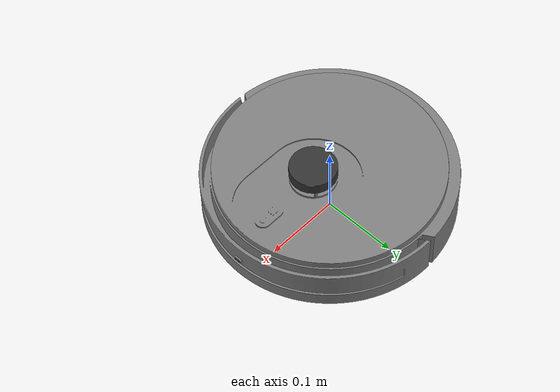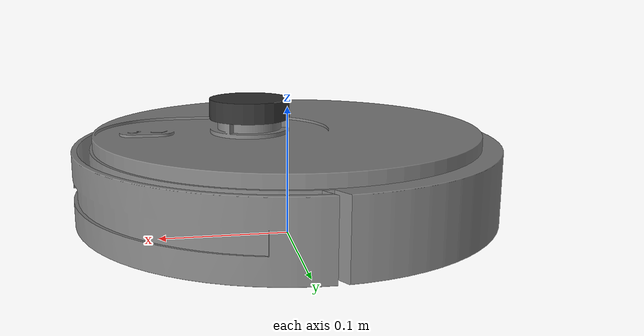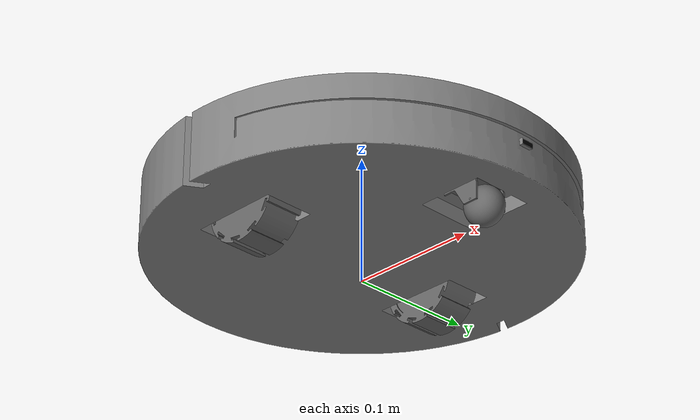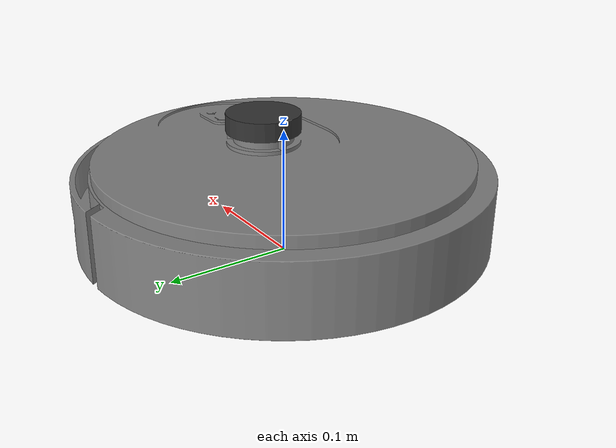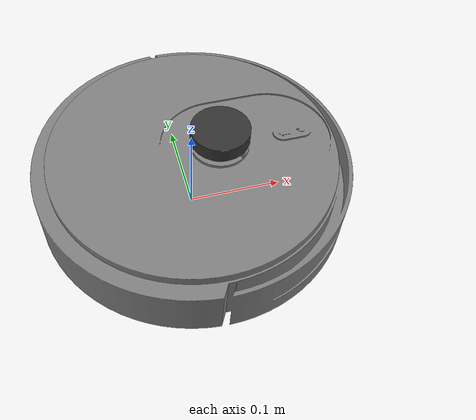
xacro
<?xml version="1.0" ?>
<!-- Generated using onshape-to-robot -->
<!-- Onshape document_id: 6ec665232e6fc828980877e8 -->
<robot name="robot_vacuum" xmlns:xacro="http://www.ros.org/wiki/xacro">

    <xacro:include filename="xacro_properties/xacro_properties.xacro" />
    <xacro:include filename="modules/base_and_wheels.xacro" />
    <xacro:include filename="modules/camera.xacro" />
    <xacro:include filename="modules/lidar.xacro" />
    <xacro:include filename="gazebo/gazebo_plugins.xacro" />
    <xacro:include filename="gazebo/gazebo_properties.xacro" />

</robot>

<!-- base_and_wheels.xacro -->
<!-- Generated using onshape-to-robot -->
<!-- Onshape document_id: 6ec665232e6fc828980877e8 -->
<robot xmlns:xacro="http://www.ros.org/wiki/xacro">

<!-- Link base footprint-->
    <link name="base_footprint" />
    <!-- Joint base footprint -->
    <joint name="base_joint" type="fixed">
        <parent link="base_footprint"/>
        <child link="base_link"/>
        <origin xyz="0.0 0.0 0.0194" rpy="0.0 0.0 0.0"/>
    </joint>

<!-- Link base_link -->
  <link name="base_link">
    <inertial>
      <origin xyz="-0.00746509 0 0.0155039" rpy="0 0 0"/>
      <mass value="1.93363"/>
      <inertia ixx="0.0146674" ixy="-0" ixz="0.000285193" iyy="0.0151949" iyz="-0" izz="0.029234"/>
    </inertial>
    <!-- Part base_link -->
    <visual>
      <origin xyz="0 0 0" rpy="-0 -0 -1.5708"/>
      <geometry>
        <mesh filename="package://robot_vacuum_description/assets/base_link.stl"/>
      </geometry>
      <material name="base_link_material">
        <color rgba="0.501961 0.501961 0.501961 1"/>
      </material>
    </visual>
    <collision>
      <origin xyz="0 0 0" rpy="-0 -0 -1.5708"/>
      <geometry>
        <mesh filename="package://robot_vacuum_description/assets/base_link.stl"/>
      </geometry>
    </collision>
  </link>

  <!-- Link roof -->
  <link name="roof_link">
    <inertial>
      <origin xyz="-2e-12 -0.00178866 -0.00507735" rpy="0 0 0"/>
      <mass value="0.683273"/>
      <inertia ixx="0.00350653" ixy="0" ixz="-0" iyy="0.00362483" iyz="-1.91394e-06" izz="0.00711728"/>
    </inertial>
    <!-- Part roof -->
    <visual>
      <origin xyz="-0 0 0" rpy="3.14159 -0 0"/>
      <geometry>
        <mesh filename="package://robot_vacuum_description/assets/roof.stl"/>
      </geometry>
      <material name="roof_link_material">
        <color rgba="0.501961 0.501961 0.501961 1"/>
      </material>
    </visual>
    <collision>
      <origin xyz="-0 0 0" rpy="3.14159 -0 0"/>
      <geometry>
        <mesh filename="package://robot_vacuum_description/assets/roof.stl"/>
      </geometry>
    </collision>
  </link>

   <!-- Joint from base_link to roof -->
  <joint name="roof_joint" type="fixed">
    <origin xyz="-0 0 0.0545" rpy="3.14159 0 1.5708"/>
    <parent link="base_link"/>
    <child link="roof_link"/>
    <axis xyz="0 0 1"/>
    <limit effort="100" velocity="100"/>
  </joint>

  <!-- Link left_wheel_link -->
  <link name="left_wheel_link">
    <inertial>
      <origin xyz="-0 -0 -0.0143302" rpy="0 0 0"/>
      <mass value="0.072608"/>
      <inertia ixx="2.16495e-05" ixy="0" ixz="-0" iyy="2.16495e-05" iyz="0" izz="3.29298e-05"/>
    </inertial>
    <!-- Part left_wheel_link -->
    <visual>
      <origin xyz="0 -0 -0.029" rpy="-0 -0 0"/>
      <geometry>
        <mesh filename="package://robot_vacuum_description/assets/wheel.stl"/>
      </geometry>
      <material name="left_wheel_material">
        <color rgba="0.4 0.4 0.4 1"/>
      </material>
    </visual>
    <collision>
      <origin xyz="0 -0 -0.029" rpy="-0 -0 0"/>
      <geometry>
        <mesh filename="package://robot_vacuum_description/assets/wheel.stl"/>
      </geometry>
    </collision>
  </link>

  <!-- Joint from base_link to left_wheel -->
  <joint name="left_wheel_joint" type="continuous">
    <origin xyz="-0.015 0.075 0.0115" rpy="1.5708 -1.03727 0"/>
    <parent link="base_link"/>
    <child link="left_wheel_link"/>
    <axis xyz="0 0 -1"/>
    <limit effort="100" velocity="100"/>
  </joint>

  <!-- Link right_wheel_link -->
  <link name="right_wheel_link">
    <inertial>
      <origin xyz="-0 -0 -0.0143302" rpy="0 0 0"/>
      <mass value="0.072608"/>
      <inertia ixx="2.16495e-05" ixy="0" ixz="-0" iyy="2.16495e-05" iyz="-0" izz="3.29298e-05"/>
    </inertial>
    <!-- Part right_wheel_link -->
    <visual>
      <origin xyz="-0 -0 -0.029" rpy="0 0 0"/>
      <geometry>
        <mesh filename="package://robot_vacuum_description/assets/wheel.stl"/>
      </geometry>
      <material name="right_wheel_material">
        <color rgba="0.4 0.4 0.4 1"/>
      </material>
    </visual>
    <collision>
      <origin xyz="-0 -0 -0.029" rpy="0 0 0"/>
      <geometry>
        <mesh filename="package://robot_vacuum_description/assets/wheel.stl"/>
      </geometry>
    </collision>
  </link>

  <!-- Joint from base_link to right_wheel -->
  <joint name="right_wheel_joint" type="continuous">
    <origin xyz="-0.015 -0.075 0.0115" rpy="1.5708 1.03727 -3.14159"/>
    <parent link="base_link"/>
    <child link="right_wheel_link"/>
    <axis xyz="0 0 1"/>
    <limit effort="100" velocity="100"/>
  </joint>

  <!-- Link caster_frame -->
  <link name="caster_frame_link">
    <inertial>
      <origin xyz="-0.00286518 -0 -0.0075839" rpy="0 0 0"/>
      <mass value="0.0016661"/>
      <inertia ixx="2.7546e-07" ixy="-0" ixz="-3.0744e-08" iyy="1.47808e-07" iyz="-0" izz="3.16241e-07"/>
    </inertial>
    <!-- Part caster_frame -->
    <visual>
      <origin xyz="0 -0 -0.002" rpy="-0 0 0"/>
      <geometry>
        <mesh filename="package://robot_vacuum_description/assets/caster_frame.stl"/>
      </geometry>
      <material name="caster_frame_link_material">
        <color rgba="0.4 0.4 0.4 1"/>
      </material>
    </visual>
    <collision>
      <origin xyz="0 -0 -0.002" rpy="-0 0 0"/>
      <geometry>
        <mesh filename="package://robot_vacuum_description/assets/caster_frame.stl"/>
      </geometry>
    </collision>
  </link>

  <!-- Link caster_wheel -->
  <link name="caster_wheel_link">
    <inertial>
      <origin xyz="0 -0 -0.0145998" rpy="0 0 0"/>
      <mass value="0.0115684"/>
      <inertia ixx="9.33961e-07" ixy="0" ixz="-0" iyy="9.33961e-07" iyz="-0" izz="1.06054e-06"/>
    </inertial>
    <!-- Part caster_wheel -->
    <visual>
      <origin xyz="0 0 -0.0021" rpy="1.5708 0 -0"/>
      <geometry>
        <mesh filename="package://robot_vacuum_description/assets/caster_wheel.stl"/>
      </geometry>
      <material name="caster_wheel_link_material">
        <color rgba="0.4 0.4 0.4 1"/>
      </material>
    </visual>
    <collision>
      <origin xyz="0 0 -0.0021" rpy="1.5708 0 -0"/>
      <geometry>
        <mesh filename="package://robot_vacuum_description/assets/caster_wheel.stl"/>
      </geometry>
    </collision>
  </link>

  <!-- Joint from caster_frame to caster_wheel -->
  <joint name="caster_wheel_joint" type="continuous">
    <origin xyz="-0.009 0.0145 -0.0192" rpy="-1.5708 -0 -0"/>
    <parent link="caster_frame_link"/>
    <child link="caster_wheel_link"/>
    <axis xyz="0 0 1"/>
    <limit effort="100" velocity="100"/>
  </joint>

  <!-- Joint from base_link to caster_frame -->
  <joint name="caster_frame_joint" type="continuous">
    <origin xyz="0.11 -0 0.014" rpy="0 -0 -3.14159"/>
    <parent link="base_link"/>
    <child link="caster_frame_link"/>
    <axis xyz="0 0 1"/>
    <limit effort="100" velocity="100"/>
  </joint>

</robot>

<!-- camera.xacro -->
<!-- Generated using onshape-to-robot -->
<!-- Onshape document_id: 6ec665232e6fc828980877e8 -->
<robot xmlns:xacro="http://www.ros.org/wiki/xacro">

    <!-- Link camera -->
  <link name="camera_link">
    <inertial>
      <origin xyz="-0 0 -0.00025" rpy="0 0 0"/>
      <mass value="2.63e-05"/>
      <inertia ixx="1e-09" ixy="0" ixz="0" iyy="1e-09" iyz="0" izz="1e-09"/>
    </inertial>
    <!-- Part camera -->
    <visual>
      <origin xyz="0 0 -0.0003" rpy="0 0 0"/>
      <geometry>
        <box size="0.00025 0.01 0.004" />
      </geometry>
      <material name="camera_link_material">
        <color rgba="0 0 0 1"/>
      </material>
    </visual>
    <collision>
      <origin xyz="0 0 -0.0005" rpy="0 0 0"/>
      <geometry>
        <box size="0.01 0.005 0.002" />
      </geometry>
    </collision>
  </link>

  <!-- Joint from base_link to camera -->
  <joint name="camera_joint" type="fixed">
    <origin xyz="0.159958 -0 0.0275" rpy="0 0 0"/>
    <parent link="base_link"/>
    <child link="camera_link"/>
    <axis xyz="0 0 1"/>
    <limit effort="100" velocity="100"/>
  </joint>

  <link name="camera_optical_link">
  </link>

  <joint name="camera_optical_joint" type="fixed">
      <!-- these values have to be these values otherwise the gazebo camera
          image won't be aligned properly with the frame it is supposedly
          originating from -->
      <origin xyz="0 0 0" rpy="${-pi/2} 0 ${-pi/2}"/>
      <parent link="camera_link"/>
      <child link="camera_optical_link"/>
  </joint>

</robot>

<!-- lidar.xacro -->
<!-- Generated using onshape-to-robot -->
<!-- Onshape document_id: 6ec665232e6fc828980877e8 -->
<robot xmlns:xacro="http://www.ros.org/wiki/xacro">

    <!-- Link lidar -->
  <link name="lidar_link">
    <inertial>
      <origin xyz="-0 0 -0.005" rpy="0 0 0"/>
      <mass value="0.0258852"/>
      <inertia ixx="5.80638e-06" ixy="0" ixz="0" iyy="5.80638e-06" iyz="-0" izz="1.12633e-05"/>
    </inertial>
    <!-- Part lidar -->
    <visual>
      <origin xyz="0 0 0" rpy="0 0 0"/>
      <geometry>
        <cylinder radius="0.03" length="0.015" />
      </geometry>
      <material name="lidar_link_material">
        <color rgba="0.2 0.2 0.2 1"/>
      </material>
    </visual>
    <collision>
      <origin xyz="-0 0 0" rpy="0 0 0"/>
      <geometry>
        <cylinder radius="0.03" length="0.015" />
      </geometry>
    </collision>
  </link>

  <!-- Joint from roof to lidar -->
  <joint name="lidar_joint" type="fixed">
    <origin xyz="0 0.029 -0.026" rpy="0 3.14 4.71"/>
    <parent link="roof_link"/>
    <child link="lidar_link"/>
  </joint>

</robot>
